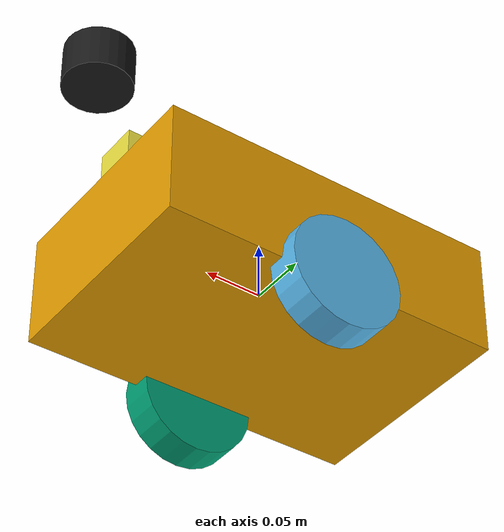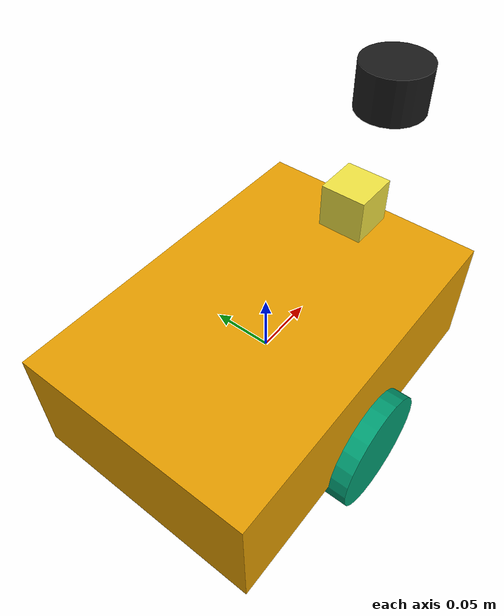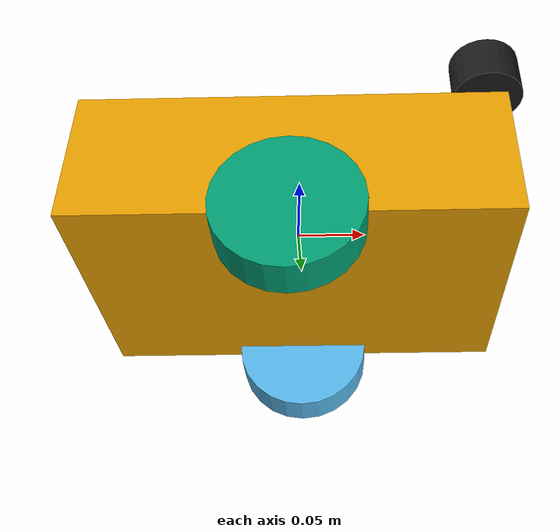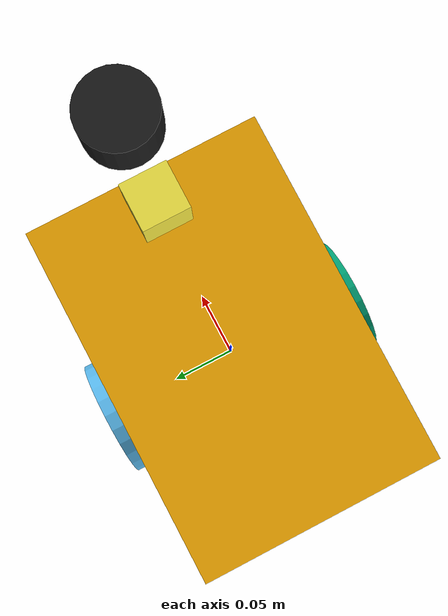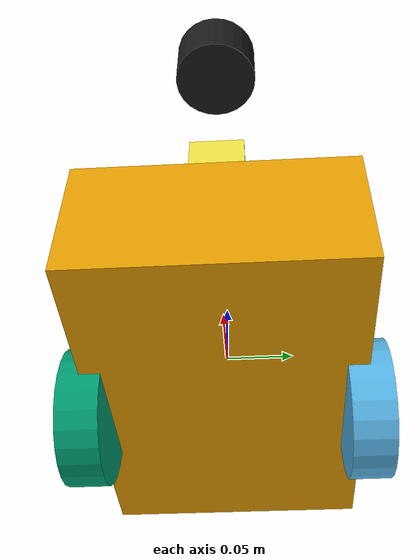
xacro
<?xml version="1.0"?>
<robot name="rescue_robot">

  <link name="base_link">
    <inertial>
      <origin xyz="0 0 0"/>
      <mass value="5.0"/>
      <inertia ixx="0.10" ixy="0" ixz="0"
               iyy="0.10" iyz="0"
               izz="0.10"/>
    </inertial>

    <visual>
      <geometry>
        <box size="0.30 0.20 0.10"/>
      </geometry>
    </visual>

    <collision>
      <geometry>
        <box size="0.30 0.20 0.10"/>
      </geometry>
    </collision>
  </link>

  <link name="left_wheel">
    <inertial>
      <mass value="0.2"/>
      <origin xyz="0 0 0"/>
      <inertia ixx="0.001" ixy="0" ixz="0"
               iyy="0.001" iyz="0"
               izz="0.001"/>
    </inertial>

    <visual>
      <geometry>
        <cylinder radius="0.05" length="0.03"/>
      </geometry>
    </visual>

    <collision>
      <geometry>
        <cylinder radius="0.05" length="0.03"/>
      </geometry>
    </collision>
  </link>

  <link name="right_wheel">
    <inertial>
      <mass value="0.2"/>
      <origin xyz="0 0 0"/>
      <inertia ixx="0.001" ixy="0" ixz="0"
               iyy="0.001" iyz="0"
               izz="0.001"/>
    </inertial>

    <visual>
      <geometry>
        <cylinder radius="0.05" length="0.03"/>
      </geometry>
    </visual>

    <collision>
      <geometry>
        <cylinder radius="0.05" length="0.03"/>
      </geometry>
    </collision>
  </link>

  <joint name="left_wheel_joint" type="continuous">
    <parent link="base_link"/>
    <child link="left_wheel"/>
    <origin xyz="0 0.10 -0.05" rpy="1.5707 0 0"/>
    <axis xyz="0 0 -1"/>
  </joint>

  <joint name="right_wheel_joint" type="continuous">
    <parent link="base_link"/>
    <child link="right_wheel"/>
    <origin xyz="0 -0.10 -0.05" rpy="1.5707 0 0"/>
    <axis xyz="0 0 -1"/>
  </joint>

  <link name="camera_link">
    <visual>
      <geometry>
        <box size="0.04 0.04 0.04"/>
      </geometry>
    </visual>

    <collision>
      <geometry>
        <box size="0.04 0.04 0.04"/>
      </geometry>
    </collision>

    <inertial>
      <mass value="0.05"/>
      <origin xyz="0 0 0"/>
      <inertia ixx="0.0001" ixy="0" ixz="0"
               iyy="0.0001" iyz="0"
               izz="0.0001"/>
    </inertial>
  </link>

  <joint name="camera_joint" type="fixed">
    <parent link="base_link"/>
    <child link="camera_link"/>
    <origin xyz="0.12 0 0.07" rpy="0 0 0"/>
  </joint>

  <gazebo reference="camera_link">
    <sensor type="camera" name="front_camera">
      <always_on>true</always_on>
      <visualize>true</visualize>

      <camera>
        <horizontal_fov>1.396</horizontal_fov>

        <image>
          <width>640</width>
          <height>480</height>
          <format>R8G8B8</format>
        </image>

        <clip>
          <near>0.05</near>
          <far>50</far>
        </clip>
      </camera>

      <plugin name="camera_controller"
              filename="libgazebo_ros_camera.so">
        <frame_name>camera_link</frame_name>
      </plugin>
    </sensor>
  </gazebo>

  <!-- Level 2: 360-degree LiDAR -->
  <link name="lidar_link">
    <visual>
      <geometry>
        <cylinder radius="0.03" length="0.04"/>
      </geometry>
      <material name="lidar_black">
        <color rgba="0.1 0.1 0.1 1.0"/>
      </material>
    </visual>

    <collision>
      <geometry>
        <cylinder radius="0.03" length="0.04"/>
      </geometry>
    </collision>

    <inertial>
      <mass value="0.05"/>
      <origin xyz="0 0 0"/>
      <inertia ixx="0.0001" ixy="0" ixz="0"
               iyy="0.0001" iyz="0"
               izz="0.0001"/>
    </inertial>
  </link>

  <joint name="lidar_joint" type="fixed">
    <parent link="base_link"/>
    <child link="lidar_link"/>
    <origin xyz="0.16 0 0.16" rpy="0 0 0"/>
  </joint>

  <gazebo reference="lidar_link">
    <material>Gazebo/Black</material>

    <sensor name="lidar_sensor" type="ray">
      <always_on>true</always_on>
      <visualize>true</visualize>
      <update_rate>10</update_rate>

      <ray>
        <scan>
          <horizontal>
            <samples>360</samples>
            <resolution>1</resolution>
            <min_angle>-3.14159</min_angle>
            <max_angle>3.14159</max_angle>
          </horizontal>
        </scan>

        <range>
          <min>0.12</min>
          <max>8.0</max>
          <resolution>0.01</resolution>
        </range>

        <noise>
          <type>gaussian</type>
          <mean>0.0</mean>
          <stddev>0.01</stddev>
        </noise>
      </ray>

      <plugin name="lidar_controller"
              filename="libgazebo_ros_ray_sensor.so">
        <ros>
          <remapping>~/out:=scan</remapping>
        </ros>
        <output_type>sensor_msgs/LaserScan</output_type>
        <frame_name>lidar_link</frame_name>
      </plugin>
    </sensor>
  </gazebo>

  <gazebo>
    <plugin name="diff_drive"
            filename="libgazebo_ros_diff_drive.so">

      <left_joint>left_wheel_joint</left_joint>
      <right_joint>right_wheel_joint</right_joint>

      <wheel_separation>0.20</wheel_separation>
      <wheel_diameter>0.10</wheel_diameter>

      <command_topic>cmd_vel</command_topic>
      <odometry_topic>odom</odometry_topic>

      <odometry_frame>odom</odometry_frame>
      <robot_base_frame>base_link</robot_base_frame>

      <publish_odom>true</publish_odom>

    </plugin>
  </gazebo>

</robot>
